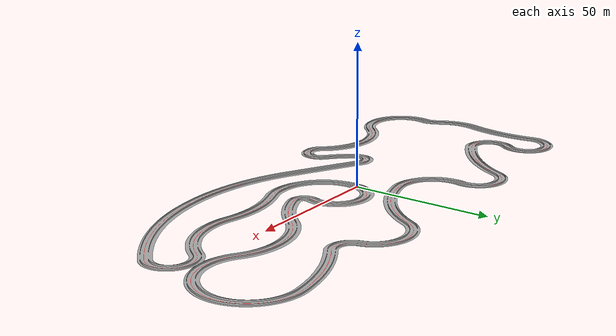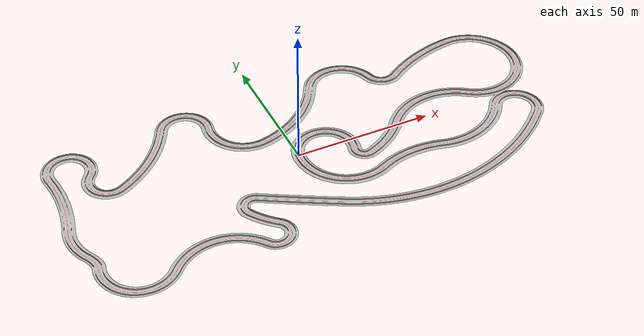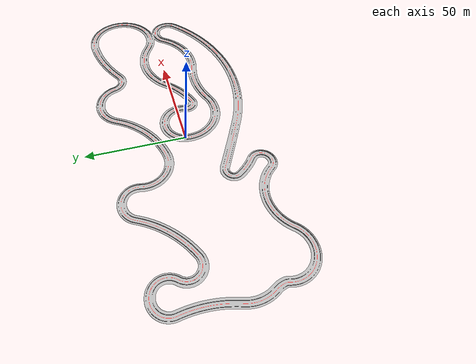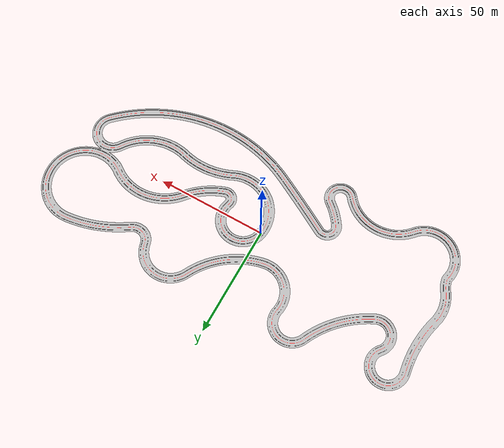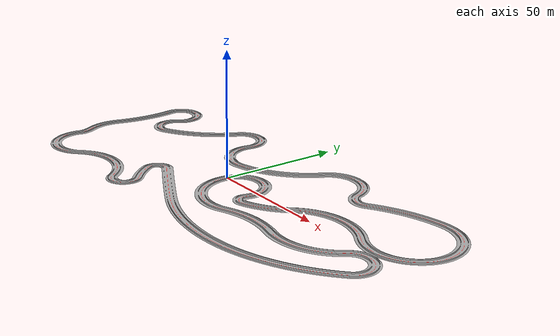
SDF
<?xml version="1.0" ?>
<sdf version="1.5">
<world name="default">
    <!-- A global light source -->
    <include>
        <uri>model://sun</uri>
    </include>
    <include>
        <uri>model://many_curves</uri>
        <pose>0 0 0 0 0 0</pose>
    </include>
    <include>
        <uri>model://f1_renault</uri>
        <!-- NORMAL-->
        <pose>0.01 -0.02 0 0 0 -1.73</pose>
        <!-- 180º turn NORMAL -->
    </include>
    <scene>
        <sky>
            <clouds>
                <speed>12</speed>
            </clouds>
        </sky>
        <ambient>1.0 1.0 1.0 1.0</ambient>
        <shadows>false</shadows>
        <grid>false</grid>
    </scene>
</world>
</sdf>

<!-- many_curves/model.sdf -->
<sdf version="1.3">
<model name="circuito2">
	<static>true</static>
	<link name="mapa">
		<pose>0 0 0 0 0 0</pose>
		<collision name="collision">
			<geometry>
				<plane>
					<normal>0 0 1</normal>
					<size>1000 1000</size>
				</plane>
			</geometry>
		</collision>
		<visual name="visual">
			<pose>0 0 0 0 0 0</pose>
			<geometry>
				<mesh>
					<uri>model://curveGP/meshes/circuit_curve.dae</uri>
				</mesh>
			</geometry>
		</visual>
	</link>
	<link name="pared">
            <pose>0 0 0 0 0 0</pose>
            <collision name="collision">
               <geometry>
                  <mesh>
                        <uri>model://curveGP/meshes/pared.dae</uri>
                  </mesh>
                                </geometry>
          </collision>
            <visual name="visual">
                <pose>0 0 0 0 0 0</pose>
                <geometry>
                  <mesh>
                        <uri>model://curveGP/meshes/pared.dae</uri>
                  </mesh>
              </geometry>
          </visual>
	</link>
</model>
</sdf>

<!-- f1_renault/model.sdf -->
<sdf version="1.9">
  <model name="f1_renault">
    <pose>0 0 0 0 0 0</pose>
    <static>false</static>

    <link name="f1">
      <pose>0 0 0 0 0 0</pose>
      <inertial>
        <mass>10</mass>
        <inertia>
          <ixx>1</ixx>
          <ixy>0.0</ixy>
          <iyy>1</iyy>
          <ixz>0.0</ixz>
          <iyz>0.0</iyz>
          <izz>1.0</izz>
        </inertia>
      </inertial>

      <collision name="collision">
        <geometry>
          <mesh>
            <uri>model://f1_renault/Renault/Car.obj</uri>
            <scale>0.2 0.2 0.2</scale>
          </mesh>
        </geometry>
      </collision>

      <visual name="visual">
        <geometry>
          <mesh>
            <uri>model://f1_renault/Renault/Car.obj</uri>
            <scale>0.2 0.2 0.2</scale>
          </mesh>
        </geometry>
      </visual>

      <visual name='left_cam'>
        <pose>0.45000 0.040000 0.1000000 0.000000 -0.000000 0.0000000</pose>
        <geometry>
          <sphere>
            <radius>.005</radius>
          </sphere>
        </geometry>
      </visual>

      <sensor name="cam_f1_left" type="camera">
        <pose>0.45000 0.040000 0.1000000 0.000000 -0.000000 0.0000000</pose>
        <always_on>true</always_on>
        <visualize>true</visualize>
        <update_rate>20.000000</update_rate>
        <topic>/cam_f1_left/image_raw</topic>
        <camera name="cleft">
          <camera_info_topic>/cam_f1_left/camera_info</camera_info_topic>
          <horizontal_fov>1.570000</horizontal_fov>
          <image>
            <width>640</width>
            <height>480</height>
            <format>R8G8B8</format>
          </image>
          <clip>
            <near>0.100000</near>
            <far>15.000000</far>
          </clip>
          <noise>
            <type>gaussian</type>
            <mean>0.0</mean>
            <stddev>0.007</stddev>
          </noise>
        </camera>
      </sensor>

    </link>

    <plugin filename="gz-sim-velocity-control-system" name="gz::sim::systems::VelocityControl">
      <topic>/F1ROS/cmd_vel</topic>
    </plugin>

    <plugin filename="gz-sim-odometry-publisher-system" name="gz::sim::systems::OdometryPublisher">
      <odom_frame>odom</odom_frame>
      <robot_base_frame>xf1</robot_base_frame>
      <odom_publish_frequency>20.0</odom_publish_frequency>
      <odom_topic>F1ROS/odom</odom_topic>
      <dimensions>3</dimensions>
    </plugin>

  </model>
</sdf>
